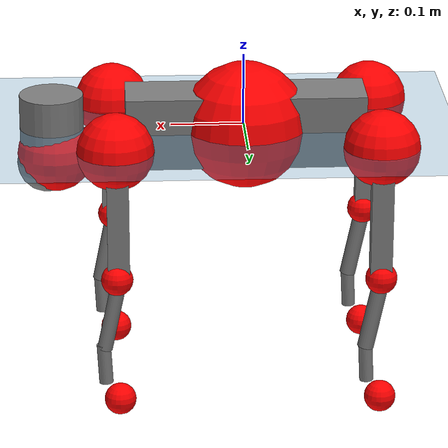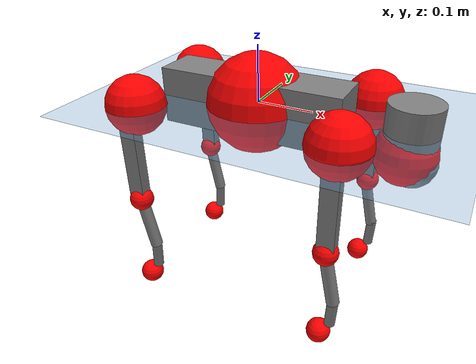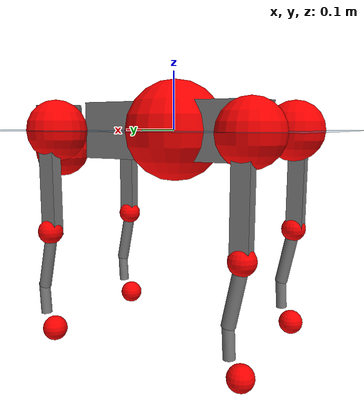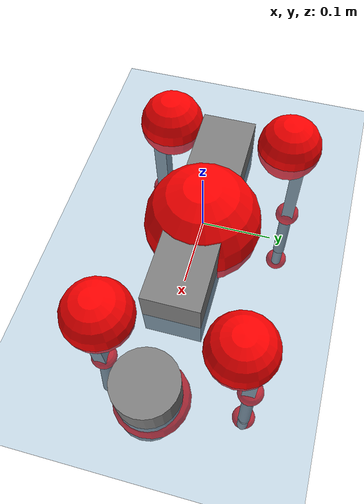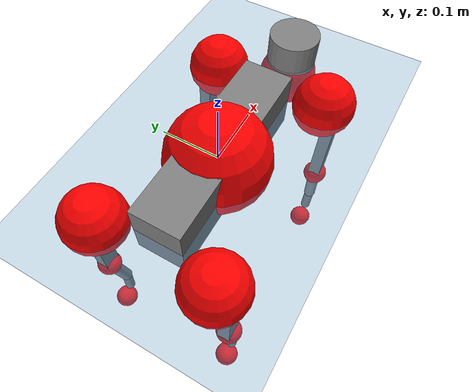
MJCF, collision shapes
<mujoco model="go2">
  <compiler angle="radian" assetdir="assets" balanceinertia="true" inertiafromgeom="false"/>

  <option timestep="0.005" density="1.2" viscosity="2e-05"/>

  <size nkey="1"/>

  <visual>
    <quality shadowsize="8192"/>
    <map shadowclip="0.5"/>
  </visual>

  <default>
    <default class="/">
      <geom contype="0" conaffinity="0" group="1" solref="-1000 -80"/>
      <site size="0.01 0.005 0.005" group="5"/>
      <general forcelimited="true" biastype="affine" gainprm="20" biasprm="0 -20 -0.5"/>
      <default class="go2">
        <joint armature="0.01" damping="0.01" frictionloss="0.2"/>
        <geom condim="1" margin="0.001"/>
        <default class="visual">
          <geom type="mesh" group="2"/>
        </default>
        <default class="collision">
          <geom group="3"/>
          <default class="foot">
            <geom size="0.022 0 0" condim="6" priority="1" friction="0.8 0.02 0.01" solimp="0.015 1 0.022"/>
          </default>
        </default>
        <default class="reward_collision_sphere">
          <geom group="5" rgba="1 0 0 1"/>
        </default>
      </default>
    </default>
  </default>

  <asset>
    <texture type="skybox" colorspace="auto" name="//unnamed_texture_0" builtin="gradient" rgb1="0.95 0.95 0.95" rgb2="0.95 0.95 0.95" width="100" height="600"/>
    <texture type="2d" colorspace="auto" name="texplane" builtin="checker" rgb1="0.345 0.575 0.748" rgb2="0.345 0.575 0.748" markrgb="1 1 1" width="512" height="512"/>
    <material name="MatPlane" class="/" texture="texplane" texuniform="true" texrepeat="2 2" specular="0.9"/>
    <material name="metal" class="/" rgba="0.9 0.95 0.95 1"/>
    <material name="black" class="/" rgba="0 0 0 1"/>
    <material name="white" class="/"/>
    <material name="gray" class="/" rgba="0.671705 0.692426 0.77427 1"/>
    <mesh name="base_0" class="/" file="base_0.obj"/>
    <mesh name="base_1" class="/" file="base_1.obj"/>
    <mesh name="base_2" class="/" file="base_2.obj"/>
    <mesh name="base_3" class="/" file="base_3.obj"/>
    <mesh name="base_4" class="/" file="base_4.obj"/>
    <mesh name="hip_0" class="/" file="hip_0.obj"/>
    <mesh name="hip_1" class="/" file="hip_1.obj"/>
    <mesh name="thigh_0" class="/" file="thigh_0.obj"/>
    <mesh name="thigh_1" class="/" file="thigh_1.obj"/>
    <mesh name="thigh_mirror_0" class="/" file="thigh_mirror_0.obj"/>
    <mesh name="thigh_mirror_1" class="/" file="thigh_mirror_1.obj"/>
    <mesh name="calf_0" class="/" file="calf_0.obj"/>
    <mesh name="calf_1" class="/" file="calf_1.obj"/>
    <mesh name="calf_mirror_0" class="/" file="calf_mirror_0.obj"/>
    <mesh name="calf_mirror_1" class="/" file="calf_mirror_1.obj"/>
    <mesh name="foot" class="/" file="foot.obj"/>
  </asset>

  <worldbody>
    <geom name="floor" class="/" size="100 100 0.125" type="plane" group="0" material="MatPlane"/>
    <light name="toplight_shadow" class="/" pos="0 0 5" dir="0.0990148 0.0990148 -0.990148" type="directional" ambient="0.04 0.04 0.04" diffuse="0.55 0.55 0.55" specular="0.12 0.12 0.12"/>
    <light name="toplight_fill" class="/" pos="0 0 5" dir="0.0990148 0.0990148 -0.990148" type="directional" castshadow="false" ambient="0.04 0.04 0.04" diffuse="0.3 0.3 0.3" specular="0.08 0.08 0.08"/>
    <body name="trunk" childclass="go2" pos="-0.00219718 -0.000838504 -0.000901871" quat="1 -0.000162349 2.10495e-05 -0.000868655">
      <inertial pos="0.0185431 0.000817784 -0.00449033" quat="0.00718991 0.717784 0.00647422 0.696199" mass="4.61046" diaginertia="0.076905 0.0452372 0.0102354"/>
      <joint name="//unnamed_joint_0" type="free" armature="0" damping="0" frictionloss="0"/>
      <geom name="//unnamed_geom_1" class="visual" material="black" mesh="base_0"/>
      <geom name="//unnamed_geom_2" class="visual" material="black" mesh="base_1"/>
      <geom name="//unnamed_geom_3" class="visual" material="black" mesh="base_2"/>
      <geom name="//unnamed_geom_4" class="visual" material="white" mesh="base_3"/>
      <geom name="//unnamed_geom_5" class="visual" material="gray" mesh="base_4"/>
      <geom name="trunk_1" class="collision" size="0.164696 0.0409332 0.0499078" type="box"/>
      <geom name="trunk_2" class="collision" size="0.0437788 0.0394009" pos="0.265777 0 0.00837387" type="cylinder"/>
      <geom name="trunk_3" class="collision" size="0.0411521" pos="0.273237 0 -0.0502432"/>
      <geom name="//unnamed_geom_9" class="reward_collision_sphere" size="0.0875576"/>
      <geom name="//unnamed_geom_10" class="reward_collision_sphere" size="0.0525346" pos="0.261114 0 -0.0376824"/>
      <site name="imu" pos="-0.0175441 -0.012392 0.0367634" size="0.00875576"/>
      <camera name="track" pos="0 -1.71358 0" quat="0.707107 0.707107 0 0" mode="trackcom"/>
      <camera name="ego_camera" pos="0.290956 0 0.0376824" quat="-0.5 -0.5 0.5 0.5"/>
      <body name="FL_hip" pos="0.179549 0.0412549 0.000165464" quat="0.999999 0.000912078 0.000795375 -0.00083301">
        <inertial pos="-0.00596221 0.00181907 0.000816839" quat="0.498706 0.495845 0.513743 0.491425" mass="0.470036" diaginertia="0.000644048 0.000283385 0.000206851"/>
        <joint name="FL_hip_joint" pos="0 0 0" axis="0.999943 -0.0106437 -0.000764204" stiffness="0.00136609" range="-0.993483 1.05715" armature="0.00985754" damping="0" frictionloss="0.183129"/>
        <geom name="//unnamed_geom_11" class="visual" material="metal" mesh="hip_0"/>
        <geom name="//unnamed_geom_12" class="visual" material="gray" mesh="hip_1"/>
        <geom name="//unnamed_geom_13" class="collision" size="0.0402765 0.0175115" pos="0 0.0685432 0" quat="0.707107 0.707107 0 0" type="cylinder"/>
        <geom name="//unnamed_geom_14" class="reward_collision_sphere" size="0.0525346" pos="0 0.0599753 0"/>
        <body name="FL_thigh" pos="-0.00175624 0.0824538 0.000707331" quat="1 0.00014492 -0.000165232 0.000159045">
          <inertial pos="-0.0041289 -0.0216306 -0.029819" quat="0.82886 0.0869428 -0.0169964 0.552398" mass="0.787006" diaginertia="0.00416335 0.00266951 0.000358754"/>
          <joint name="FL_thigh_joint" pos="0 0 0" axis="-0.00141116 0.999998 0.00107977" stiffness="0.00456078" range="-1.57447 3.54037" armature="0.00835457" damping="0" frictionloss="0.174279"/>
          <geom name="//unnamed_geom_15" class="visual" material="metal" mesh="thigh_0"/>
          <geom name="//unnamed_geom_16" class="visual" material="gray" mesh="thigh_1"/>
          <geom name="//unnamed_geom_17" class="collision" size="0.0932489 0.0107258 0.0148848" pos="0 0 -0.0891817" quat="0.707107 0 0.707107 0" type="box"/>
          <body name="FL_calf" pos="0.0023925 0.00242621 -0.176445" quat="1 3.62944e-05 -2.43548e-05 -2.75847e-05">
            <inertial pos="0.00665276 -0.00148686 -0.116106" quat="0.710533 0.00188841 -0.0053096 0.703641" mass="0.168508" diaginertia="0.00108445 0.000688509 2.19706e-05"/>
            <joint name="FL_calf_joint" pos="0 0 0" axis="0.00866692 0.99996 -0.00236313" range="-2.68671 -0.890746" armature="0.00855437" damping="0" frictionloss="0.180901"/>
            <geom name="//unnamed_geom_18" class="visual" material="gray" mesh="calf_0"/>
            <geom name="//unnamed_geom_19" class="visual" material="black" mesh="calf_1"/>
            <geom name="FL_calf0" class="collision" size="0.0105069 0.0525346" pos="0.00746041 0 -0.0502432" quat="0.994493 0 -0.104807 0" type="cylinder"/>
            <geom name="//unnamed_geom_21" class="collision" size="0.00963134 0.0284562" pos="0.018651 0 -0.123933" quat="0.999688 0 0.0249974 0" type="cylinder"/>
            <geom name="//unnamed_geom_22" class="visual" pos="0 0 -0.178363" quat="1 0 0 0" material="black" mesh="foot"/>
            <geom name="FL_foot" class="foot" size="0.0171195" pos="-0.0018651 0 -0.178363"/>
            <geom name="//unnamed_geom_24" class="reward_collision_sphere" size="0.0218894"/>
            <geom name="//unnamed_geom_25" class="reward_collision_sphere" size="0.0218894" pos="-0.0018651 0 -0.178363"/>
            <site name="FL_foot" class="foot" pos="-0.0018651 0 -0.178363" size="0.00875576"/>
          </body>
        </body>
      </body>
      <body name="FR_hip" pos="0.182049 -0.0382146 0.00293114" quat="1 9.27417e-05 7.42045e-05 -0.000180964">
        <inertial pos="-0.00391052 -0.00354832 0.000201632" quat="0.50282 0.508533 0.487408 0.500998" mass="0.472086" diaginertia="0.000636265 0.000285097 0.000201624"/>
        <joint name="FR_hip_joint" pos="0 0 0" axis="0.999994 -0.00326514 0.00076482" range="-1.00184 1.05207" armature="0.00874636" damping="0.0151461" frictionloss="0.171278"/>
        <geom name="//unnamed_geom_26" class="visual" pos="0 1.69036e-10 7.2503e-09" quat="4.63268e-05 1 0 0" material="metal" mesh="hip_0"/>
        <geom name="//unnamed_geom_27" class="visual" pos="0 2.74027e-10 -1.79328e-08" quat="4.63268e-05 1 0 0" material="gray" mesh="hip_1"/>
        <geom name="//unnamed_geom_28" class="collision" size="0.0402765 0.0175115" pos="0 -0.0685432 0" quat="0.707107 0.707107 0 0" type="cylinder"/>
        <geom name="//unnamed_geom_29" class="reward_collision_sphere" size="0.0525346" pos="0 -0.0599753 0"/>
        <body name="FR_thigh" pos="0.00136106 -0.081316 -0.00180223" quat="1 -1.75701e-05 -0.00029332 0.000151476">
          <inertial pos="-0.00348371 0.0191612 -0.0300026" quat="0.547749 -0.0192032 0.0960757 0.830886" mass="0.793045" diaginertia="0.00428144 0.00279204 0.000374505"/>
          <joint name="FR_thigh_joint" pos="0 0 0" axis="0.00189918 -0.999998 0.000575224" stiffness="0.00348661" range="-3.54468 1.62014" armature="0.00773281" damping="0.0117312" frictionloss="0.166013"/>
          <geom name="//unnamed_geom_30" class="visual" material="metal" mesh="thigh_mirror_0"/>
          <geom name="//unnamed_geom_31" class="visual" material="gray" mesh="thigh_mirror_1"/>
          <geom name="//unnamed_geom_32" class="collision" size="0.0932489 0.0107258 0.0148848" pos="0 0 -0.0891817" quat="0.707107 0 0.707107 0" type="box"/>
          <body name="FR_calf" pos="-0.000786785 -0.000301139 -0.178415" quat="1 2.67924e-05 -1.41204e-05 3.13353e-07">
            <inertial pos="0.00479246 0.00115173 -0.116148" quat="0.702918 -0.00850525 0.00571423 0.711197" mass="0.152335" diaginertia="0.00102149 0.00067618 2.04995e-05"/>
            <joint name="FR_calf_joint" pos="0 0 0" axis="-0.00115559 -0.999996 0.00249845" stiffness="0.00127606" range="0.844314 2.70268" armature="0.00982069" damping="0.0153914" frictionloss="0.174093"/>
            <geom name="//unnamed_geom_33" class="visual" material="gray" mesh="calf_mirror_0"/>
            <geom name="//unnamed_geom_34" class="visual" material="black" mesh="calf_mirror_1"/>
            <geom name="FR_calf0" class="collision" size="0.0113825 0.0525346" pos="0.00932551 0 -0.0502432" quat="0.995004 0 -0.0998334 0" type="cylinder"/>
            <geom name="//unnamed_geom_36" class="collision" size="0.00963134 0.0284562" pos="0.018651 0 -0.123933" quat="0.999688 0 0.0249974 0" type="cylinder"/>
            <geom name="//unnamed_geom_37" class="visual" pos="0 0 -0.178363" quat="1 0 0 0" material="black" mesh="foot"/>
            <geom name="FR_foot" class="foot" size="0.0207836" pos="-0.0018651 0 -0.178363"/>
            <geom name="//unnamed_geom_39" class="reward_collision_sphere" size="0.0218894"/>
            <geom name="//unnamed_geom_40" class="reward_collision_sphere" size="0.0218894" pos="-0.0018651 0 -0.178363"/>
            <site name="FR_foot" class="foot" pos="-0.0018651 0 -0.178363" size="0.00875576"/>
          </body>
        </body>
      </body>
      <body name="RL_hip" pos="-0.179128 0.0387111 -0.00165721" quat="1 -0.000158026 0.000115322 3.22946e-05">
        <inertial pos="0.0050681 0.00253586 -0.00224892" quat="0.50852 0.496169 0.496538 0.498673" mass="0.474329" diaginertia="0.000649528 0.000270456 0.000199044"/>
        <joint name="RL_hip_joint" pos="0 0 0" axis="-0.99977 0.0208904 -0.00488084" range="-0.995804 1.10122" armature="0.00876988" damping="0" frictionloss="0.19905"/>
        <geom name="//unnamed_geom_41" class="visual" pos="-8.2903e-10 0 -1.62509e-07" quat="4.63268e-05 0 1 0" material="metal" mesh="hip_0"/>
        <geom name="//unnamed_geom_42" class="visual" pos="-1.34396e-09 0 -1.44122e-07" quat="4.63268e-05 0 1 0" material="gray" mesh="hip_1"/>
        <geom name="//unnamed_geom_43" class="collision" size="0.0402765 0.0175115" pos="0 0.0685432 0" quat="0.707107 0.707107 0 0" type="cylinder"/>
        <geom name="//unnamed_geom_44" class="reward_collision_sphere" size="0.0525346" pos="0 0.0599753 0"/>
        <body name="RL_thigh" pos="0.000474441 0.0823359 -4.58781e-05" quat="1 -4.23602e-05 8.3628e-06 -4.15712e-05">
          <inertial pos="-0.00618866 -0.0194778 -0.0299474" quat="0.825684 0.0789707 -0.0105061 0.55848" mass="0.785208" diaginertia="0.00406341 0.0027222 0.000350278"/>
          <joint name="RL_thigh_joint" pos="0 0 0" axis="-0.0151949 0.999843 -0.00908579" stiffness="0.00247328" range="-0.577309 4.56001" armature="0.00867874" damping="0.000442053" frictionloss="0.172523"/>
          <geom name="//unnamed_geom_45" class="visual" material="metal" mesh="thigh_0"/>
          <geom name="//unnamed_geom_46" class="visual" material="gray" mesh="thigh_1"/>
          <geom name="//unnamed_geom_47" class="collision" size="0.0932489 0.0107258 0.0148848" pos="0 0 -0.0891817" quat="0.707107 0 0.707107 0" type="box"/>
          <body name="RL_calf" pos="-0.00128993 -0.000769199 -0.18125" quat="1 -4.48525e-05 3.91011e-05 -4.62882e-05">
            <inertial pos="0.00706126 -0.00206862 -0.116493" quat="0.713974 -0.0100177 -0.00700442 0.700065" mass="0.156636" diaginertia="0.00105047 0.000673591 2.18981e-05"/>
            <joint name="RL_calf_joint" pos="0 0 0" axis="-0.00503376 0.999972 0.00556229" range="-2.73529 -0.835663" armature="0.00857568" damping="0.00110248" frictionloss="0.188034"/>
            <geom name="//unnamed_geom_48" class="visual" material="gray" mesh="calf_0"/>
            <geom name="//unnamed_geom_49" class="visual" material="black" mesh="calf_1"/>
            <geom name="RL_calf0" class="collision" size="0.0113825 0.0525346" pos="0.00932551 0 -0.0502432" quat="0.995004 0 -0.0998334 0" type="cylinder"/>
            <geom name="//unnamed_geom_51" class="collision" size="0.00963134 0.0284562" pos="0.018651 0 -0.123933" quat="0.999688 0 0.0249974 0" type="cylinder"/>
            <geom name="//unnamed_geom_52" class="visual" pos="0 0 -0.178363" quat="1 0 0 0" material="black" mesh="foot"/>
            <geom name="RL_foot" class="foot" size="0.0180716" pos="-0.0018651 0 -0.178363"/>
            <geom name="//unnamed_geom_54" class="reward_collision_sphere" size="0.0218894"/>
            <geom name="//unnamed_geom_55" class="reward_collision_sphere" size="0.0218894" pos="-0.0018651 0 -0.178363"/>
            <site name="RL_foot" class="foot" pos="-0.0018651 0 -0.178363" size="0.00875576"/>
          </body>
        </body>
      </body>
      <body name="RR_hip" pos="-0.180244 -0.0404463 -0.000278724" quat="1 -3.76698e-05 6.54708e-05 0.00017378">
        <inertial pos="0.00540417 0.00119911 -0.00244324" quat="0.499445 0.497032 0.498499 0.504988" mass="0.442337" diaginertia="0.000610767 0.000269781 0.000191589"/>
        <joint name="RR_hip_joint" pos="0 0 0" axis="-0.999992 -0.00337222 0.00213461" stiffness="0.000826325" range="-1.04598 0.996155" armature="0.00826523" damping="0" frictionloss="0.172486"/>
        <geom name="//unnamed_geom_56" class="visual" pos="8.26407e-10 1.69036e-10 -1.69759e-07" quat="2.14617e-09 4.63268e-05 4.63268e-05 -1" material="metal" mesh="hip_0"/>
        <geom name="//unnamed_geom_57" class="visual" pos="1.35044e-09 2.74027e-10 -1.2619e-07" quat="2.14617e-09 4.63268e-05 4.63268e-05 -1" material="gray" mesh="hip_1"/>
        <geom name="//unnamed_geom_58" class="collision" size="0.0402765 0.0175115" pos="0 -0.0685432 0" quat="0.707107 0.707107 0 0" type="cylinder"/>
        <geom name="//unnamed_geom_59" class="reward_collision_sphere" size="0.0525346" pos="0 -0.0599753 0"/>
        <body name="RR_thigh" pos="-0.00117144 -0.0826475 0.00191007" quat="1 9.96927e-06 3.66513e-05 -0.000316483">
          <inertial pos="-0.00501714 0.0215259 -0.0274059" quat="0.55185 -0.0195195 0.0848825 0.829383" mass="0.723767" diaginertia="0.00408546 0.0026192 0.0003613"/>
          <joint name="RR_thigh_joint" pos="0 0 0" axis="0.00446811 -0.99999 -0.000263135" stiffness="0.00849834" range="-4.59135 0.57841" armature="0.00909737" damping="0.0128363" frictionloss="0.152087"/>
          <geom name="//unnamed_geom_60" class="visual" material="metal" mesh="thigh_mirror_0"/>
          <geom name="//unnamed_geom_61" class="visual" material="gray" mesh="thigh_mirror_1"/>
          <geom name="//unnamed_geom_62" class="collision" size="0.0932489 0.0107258 0.0148848" pos="0 0 -0.0891817" quat="0.707107 0 0.707107 0" type="box"/>
          <body name="RR_calf" pos="0.00305044 -0.00121828 -0.179396" quat="1 0.000280139 -0.000425424 0.000200704">
            <inertial pos="0.00530142 0.00073377 -0.118421" quat="0.705178 -0.00102621 0.00330356 0.709022" mass="0.153333" diaginertia="0.00103881 0.000660309 2.13961e-05"/>
            <joint name="RR_calf_joint" pos="0 0 0" axis="0.000152449 -1 -6.41359e-05" range="0.827508 2.7531" armature="0.00853875" damping="0.00473118" frictionloss="0.17106"/>
            <geom name="//unnamed_geom_63" class="visual" material="gray" mesh="calf_mirror_0"/>
            <geom name="//unnamed_geom_64" class="visual" material="black" mesh="calf_mirror_1"/>
            <geom name="RR_calf0" class="collision" size="0.0113825 0.0525346" pos="0.00932551 0 -0.0502432" quat="0.995004 0 -0.0998334 0" type="cylinder"/>
            <geom name="//unnamed_geom_66" class="collision" size="0.00963134 0.0284562" pos="0.018651 0 -0.123933" quat="0.999688 0 0.0249974 0" type="cylinder"/>
            <geom name="//unnamed_geom_67" class="visual" pos="0 0 -0.178363" quat="1 0 0 0" material="black" mesh="foot"/>
            <geom name="RR_foot" class="foot" size="0.0216199" pos="-0.0018651 0 -0.178363"/>
            <geom name="//unnamed_geom_69" class="reward_collision_sphere" size="0.0218894"/>
            <geom name="//unnamed_geom_70" class="reward_collision_sphere" size="0.0218894" pos="-0.0018651 0 -0.178363"/>
            <site name="RR_foot" class="foot" pos="-0.0018651 0 -0.178363" size="0.00875576"/>
          </body>
        </body>
      </body>
    </body>
  </worldbody>

  <contact>
    <pair class="/" geom1="floor" geom2="FL_foot" name="//unnamed_contact_0"/>
    <pair class="/" geom1="floor" geom2="FR_foot" name="//unnamed_contact_1"/>
    <pair class="/" geom1="floor" geom2="RL_foot" name="//unnamed_contact_2"/>
    <pair class="/" geom1="floor" geom2="RR_foot" name="//unnamed_contact_3"/>
  </contact>

  <actuator>
    <general name="FL_hip" class="/" joint="FL_hip_joint" forcerange="-19.9972 19.9972" gainprm="17.8491" biasprm="0 -17.8491 -0.468875"/>
    <general name="FL_thigh" class="/" joint="FL_thigh_joint" forcerange="-22.8593 22.8593" gainprm="17.8491" biasprm="0 -17.8491 -0.468875"/>
    <general name="FL_calf" class="/" joint="FL_calf_joint" forcerange="-35.6609 35.6609" gainprm="17.8491" biasprm="0 -17.8491 -0.468875"/>
    <general name="FR_hip" class="/" joint="FR_hip_joint" forcerange="-20.4853 20.4853" gainprm="17.8491" biasprm="0 -17.8491 -0.468875"/>
    <general name="FR_thigh" class="/" joint="FR_thigh_joint" forcerange="-21.8574 21.8574" gainprm="17.8491" biasprm="0 -17.8491 -0.468875"/>
    <general name="FR_calf" class="/" joint="FR_calf_joint" forcerange="-42.5278 42.5278" gainprm="17.8491" biasprm="0 -17.8491 -0.468875"/>
    <general name="RL_hip" class="/" joint="RL_hip_joint" forcerange="-22.7839 22.7839" gainprm="17.8491" biasprm="0 -17.8491 -0.468875"/>
    <general name="RL_thigh" class="/" joint="RL_thigh_joint" forcerange="-21.4348 21.4348" gainprm="17.8491" biasprm="0 -17.8491 -0.468875"/>
    <general name="RL_calf" class="/" joint="RL_calf_joint" forcerange="-40.3698 40.3698" gainprm="17.8491" biasprm="0 -17.8491 -0.468875"/>
    <general name="RR_hip" class="/" joint="RR_hip_joint" forcerange="-20.3876 20.3876" gainprm="17.8491" biasprm="0 -17.8491 -0.468875"/>
    <general name="RR_thigh" class="/" joint="RR_thigh_joint" forcerange="-18.8015 18.8015" gainprm="17.8491" biasprm="0 -17.8491 -0.468875"/>
    <general name="RR_calf" class="/" joint="RR_calf_joint" forcerange="-35.9498 35.9498" gainprm="17.8491" biasprm="0 -17.8491 -0.468875"/>
  </actuator>

  <sensor>
    <gyro site="imu" name="imu_angular_velocity"/>
    <velocimeter site="imu" name="imu_linear_velocity"/>
    <framelinvel objtype="site" objname="FL_foot" name="FL_foot_global_linear_velocity"/>
    <framelinvel objtype="site" objname="FR_foot" name="FR_foot_global_linear_velocity"/>
    <framelinvel objtype="site" objname="RL_foot" name="RL_foot_global_linear_velocity"/>
    <framelinvel objtype="site" objname="RR_foot" name="RR_foot_global_linear_velocity"/>
  </sensor>

  <keyframe>
    <key name="home" qpos="0 0 0.325 1 0 0 0 0.1 0.8 -1.5 -0.1 -0.8 1.5 -0.1 0.8 -1.5 0.1 -0.8 1.5"/>
  </keyframe>
</mujoco>
